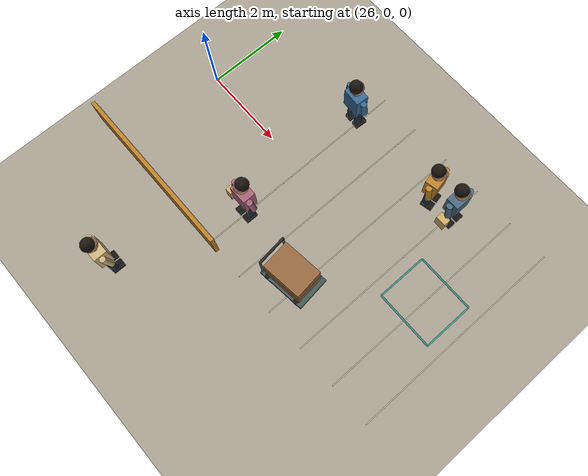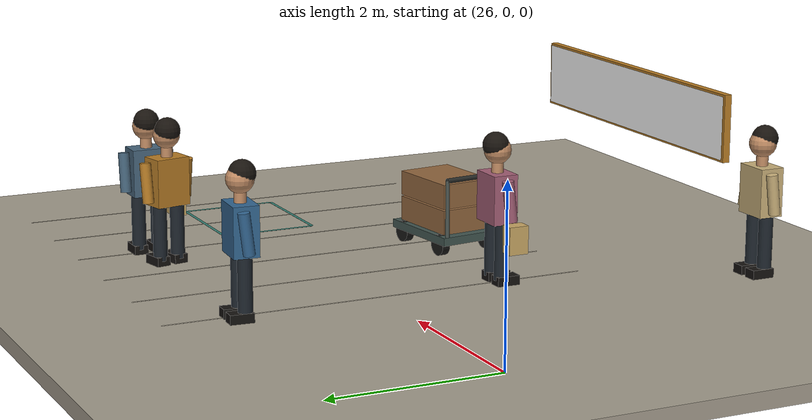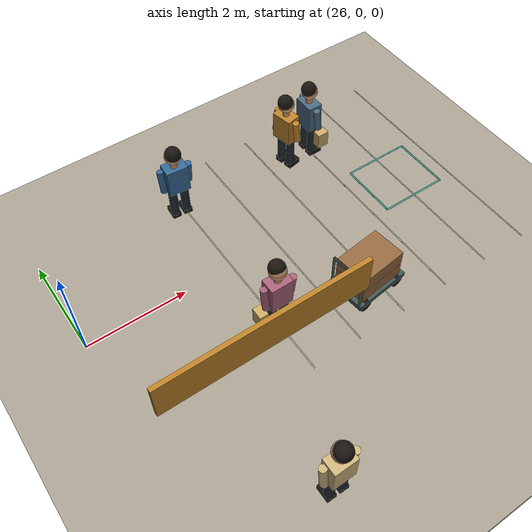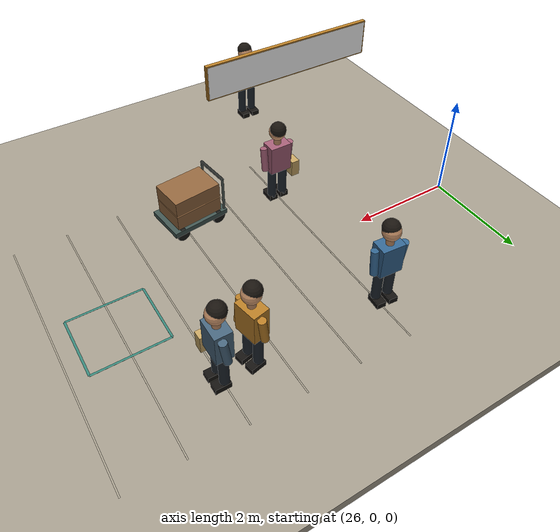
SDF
<sdf version="1.10">
 <world name="swan_market">
  <model name="ground">
   <static>true</static>
   <pose>15 0 -0.1 0 0 0</pose>
   <link name="body">
    <collision name="box_collision"><geometry><box><size>46 24 0.2</size></box></geometry></collision>
    <visual name="box_visual">
     <geometry><box><size>46 24 0.2</size></box></geometry>
     <material><ambient>0.64 0.61 0.55 1</ambient><diffuse>0.64 0.61 0.55 1</diffuse></material>
    </visual>
   </link>
  </model>
  <model name="paving_joint_29">
   <static>true</static>
   <pose>29 0 0.0045 0 0 0</pose>
   <link name="body">
    <visual name="box_visual">
     <geometry><box><size>0.025 5.2 0.001</size></box></geometry>
     <material><ambient>0.67 0.64 0.57 1</ambient><diffuse>0.67 0.64 0.57 1</diffuse></material>
    </visual>
   </link>
  </model>
  <model name="paving_joint_30">
   <static>true</static>
   <pose>30 0 0.0045 0 0 0</pose>
   <link name="body">
    <visual name="box_visual">
     <geometry><box><size>0.025 5.2 0.001</size></box></geometry>
     <material><ambient>0.67 0.64 0.57 1</ambient><diffuse>0.67 0.64 0.57 1</diffuse></material>
    </visual>
   </link>
  </model>
  <model name="paving_joint_31">
   <static>true</static>
   <pose>31 0 0.0045 0 0 0</pose>
   <link name="body">
    <visual name="box_visual">
     <geometry><box><size>0.025 5.2 0.001</size></box></geometry>
     <material><ambient>0.67 0.64 0.57 1</ambient><diffuse>0.67 0.64 0.57 1</diffuse></material>
    </visual>
   </link>
  </model>
  <model name="paving_joint_32">
   <static>true</static>
   <pose>32 0 0.0045 0 0 0</pose>
   <link name="body">
    <visual name="box_visual">
     <geometry><box><size>0.025 5.2 0.001</size></box></geometry>
     <material><ambient>0.67 0.64 0.57 1</ambient><diffuse>0.67 0.64 0.57 1</diffuse></material>
    </visual>
   </link>
  </model>
  <model name="paving_joint_33">
   <static>true</static>
   <pose>33 0 0.0045 0 0 0</pose>
   <link name="body">
    <visual name="box_visual">
     <geometry><box><size>0.025 5.2 0.001</size></box></geometry>
     <material><ambient>0.67 0.64 0.57 1</ambient><diffuse>0.67 0.64 0.57 1</diffuse></material>
    </visual>
   </link>
  </model>
  <model name="paving_joint_34">
   <static>true</static>
   <pose>34 0 0.0045 0 0 0</pose>
   <link name="body">
    <visual name="box_visual">
     <geometry><box><size>0.025 5.2 0.001</size></box></geometry>
     <material><ambient>0.67 0.64 0.57 1</ambient><diffuse>0.67 0.64 0.57 1</diffuse></material>
    </visual>
   </link>
  </model>
  <model name="signboard_7">
   <static>true</static>
   <pose>28 -2.69 2.24 0 0 0</pose>
   <link name="body">
    <collision name="box_collision"><geometry><box><size>3.65 0.08 0.72</size></box></geometry></collision>
    <visual name="box_visual">
     <geometry><box><size>3.65 0.08 0.72</size></box></geometry>
     <material><ambient>0.72 0.49 0.15 1</ambient><diffuse>0.72 0.49 0.15 1</diffuse></material>
    </visual>
   </link>
  </model>
  <model name="sign_shop_7">
   <static>true</static>
   <pose>28 -2.642 2.24 0 0 3.1416</pose>
   <link name="body">
    <visual name="lettering">
     <geometry>
      <mesh><uri>model://swan_market_assets/meshes/shop_7.dae</uri><scale>3.6 1 0.675</scale></mesh>
     </geometry>
     <material>
      <ambient>1 1 1 1</ambient>
      <diffuse>1 1 1 1</diffuse>
      <emissive>0 0 0 1</emissive>
      <pbr>
       <metal>
        <albedo_map>model://swan_market_assets/materials/textures/shop_7.png</albedo_map>
        <metalness>0</metalness>
        <roughness>1</roughness>
       </metal>
      </pbr>
     </material>
    </visual>
   </link>
  </model>
  <model name="shopper_flowers">
   <static>true</static>
   <pose>29 -1.5 0 0 0 -1.5708</pose>
   <link name="body">
    <collision name="leg_-1_collision">
     <pose>0 -0.12 0.4 0 0 0</pose>
     <geometry><cylinder><radius>0.085</radius><length>0.68</length></cylinder></geometry>
    </collision>
    <visual name="leg_-1_visual">
     <pose>0 -0.12 0.4 0 0 0</pose>
     <geometry><cylinder><radius>0.085</radius><length>0.68</length></cylinder></geometry>
     <material><ambient>0.12 0.15 0.18 1</ambient><diffuse>0.12 0.15 0.18 1</diffuse></material>
    </visual>
    <collision name="shoe_-1_collision">
     <pose>0.06 -0.12 0.055 0 0 0</pose>
     <geometry><box><size>0.28 0.17 0.11</size></box></geometry>
    </collision>
    <visual name="shoe_-1_visual">
     <pose>0.06 -0.12 0.055 0 0 0</pose>
     <geometry><box><size>0.28 0.17 0.11</size></box></geometry>
     <material><ambient>0.08 0.07 0.06 1</ambient><diffuse>0.08 0.07 0.06 1</diffuse></material>
    </visual>
    <collision name="arm_-1_collision">
     <pose>0.02 -0.27 1.02 0 -0.12 0</pose>
     <geometry><cylinder><radius>0.068</radius><length>0.48</length></cylinder></geometry>
    </collision>
    <visual name="arm_-1_visual">
     <pose>0.02 -0.27 1.02 0 -0.12 0</pose>
     <geometry><cylinder><radius>0.068</radius><length>0.48</length></cylinder></geometry>
     <material><ambient>0.64 0.37 0.46 1</ambient><diffuse>0.64 0.37 0.46 1</diffuse></material>
    </visual>
    <collision name="leg_1_collision">
     <pose>0 0.12 0.4 0 0 0</pose>
     <geometry><cylinder><radius>0.085</radius><length>0.68</length></cylinder></geometry>
    </collision>
    <visual name="leg_1_visual">
     <pose>0 0.12 0.4 0 0 0</pose>
     <geometry><cylinder><radius>0.085</radius><length>0.68</length></cylinder></geometry>
     <material><ambient>0.12 0.15 0.18 1</ambient><diffuse>0.12 0.15 0.18 1</diffuse></material>
    </visual>
    <collision name="shoe_1_collision">
     <pose>0.06 0.12 0.055 0 0 0</pose>
     <geometry><box><size>0.28 0.17 0.11</size></box></geometry>
    </collision>
    <visual name="shoe_1_visual">
     <pose>0.06 0.12 0.055 0 0 0</pose>
     <geometry><box><size>0.28 0.17 0.11</size></box></geometry>
     <material><ambient>0.08 0.07 0.06 1</ambient><diffuse>0.08 0.07 0.06 1</diffuse></material>
    </visual>
    <collision name="arm_1_collision">
     <pose>0.02 0.27 1.02 0 0.12 0</pose>
     <geometry><cylinder><radius>0.068</radius><length>0.48</length></cylinder></geometry>
    </collision>
    <visual name="arm_1_visual">
     <pose>0.02 0.27 1.02 0 0.12 0</pose>
     <geometry><cylinder><radius>0.068</radius><length>0.48</length></cylinder></geometry>
     <material><ambient>0.64 0.37 0.46 1</ambient><diffuse>0.64 0.37 0.46 1</diffuse></material>
    </visual>
    <collision name="torso_collision">
     <pose>0 0 1.02 0 0 0</pose>
     <geometry><box><size>0.3 0.43 0.58</size></box></geometry>
    </collision>
    <visual name="torso_visual">
     <pose>0 0 1.02 0 0 0</pose>
     <geometry><box><size>0.3 0.43 0.58</size></box></geometry>
     <material><ambient>0.64 0.37 0.46 1</ambient><diffuse>0.64 0.37 0.46 1</diffuse></material>
    </visual>
    <visual name="neck_visual">
     <pose>0 0 1.37 0 0 0</pose>
     <geometry><cylinder><radius>0.07</radius><length>0.13</length></cylinder></geometry>
     <material><ambient>0.77 0.56 0.4 1</ambient><diffuse>0.77 0.56 0.4 1</diffuse></material>
    </visual>
    <collision name="head_collision">
     <pose>0 0 1.57 0 0 0</pose>
     <geometry><sphere><radius>0.16</radius></sphere></geometry>
    </collision>
    <visual name="head_visual">
     <pose>0 0 1.57 0 0 0</pose>
     <geometry><sphere><radius>0.16</radius></sphere></geometry>
     <material><ambient>0.77 0.56 0.4 1</ambient><diffuse>0.77 0.56 0.4 1</diffuse></material>
    </visual>
    <visual name="hair_visual">
     <pose>-0.025 0 1.63 0 0 0</pose>
     <geometry><sphere><radius>0.155</radius></sphere></geometry>
     <material><ambient>0.1 0.08 0.06 1</ambient><diffuse>0.1 0.08 0.06 1</diffuse></material>
    </visual>
    <collision name="shopping_bag_collision">
     <pose>0.04 -0.38 0.6 0 0 0</pose>
     <geometry><box><size>0.24 0.17 0.33</size></box></geometry>
    </collision>
    <visual name="shopping_bag_visual">
     <pose>0.04 -0.38 0.6 0 0 0</pose>
     <geometry><box><size>0.24 0.17 0.33</size></box></geometry>
     <material><ambient>0.78 0.65 0.39 1</ambient><diffuse>0.78 0.65 0.39 1</diffuse></material>
    </visual>
   </link>
  </model>
  <model name="shopper_exit">
   <static>true</static>
   <pose>32 1.7 0 0 0 0</pose>
   <link name="body">
    <collision name="leg_-1_collision">
     <pose>0 -0.12 0.4 0 0 0</pose>
     <geometry><cylinder><radius>0.085</radius><length>0.68</length></cylinder></geometry>
    </collision>
    <visual name="leg_-1_visual">
     <pose>0 -0.12 0.4 0 0 0</pose>
     <geometry><cylinder><radius>0.085</radius><length>0.68</length></cylinder></geometry>
     <material><ambient>0.12 0.15 0.18 1</ambient><diffuse>0.12 0.15 0.18 1</diffuse></material>
    </visual>
    <collision name="shoe_-1_collision">
     <pose>0.06 -0.12 0.055 0 0 0</pose>
     <geometry><box><size>0.28 0.17 0.11</size></box></geometry>
    </collision>
    <visual name="shoe_-1_visual">
     <pose>0.06 -0.12 0.055 0 0 0</pose>
     <geometry><box><size>0.28 0.17 0.11</size></box></geometry>
     <material><ambient>0.08 0.07 0.06 1</ambient><diffuse>0.08 0.07 0.06 1</diffuse></material>
    </visual>
    <collision name="arm_-1_collision">
     <pose>0.02 -0.27 1.02 0 -0.12 0</pose>
     <geometry><cylinder><radius>0.068</radius><length>0.48</length></cylinder></geometry>
    </collision>
    <visual name="arm_-1_visual">
     <pose>0.02 -0.27 1.02 0 -0.12 0</pose>
     <geometry><cylinder><radius>0.068</radius><length>0.48</length></cylinder></geometry>
     <material><ambient>0.28 0.4 0.49 1</ambient><diffuse>0.28 0.4 0.49 1</diffuse></material>
    </visual>
    <collision name="leg_1_collision">
     <pose>0 0.12 0.4 0 0 0</pose>
     <geometry><cylinder><radius>0.085</radius><length>0.68</length></cylinder></geometry>
    </collision>
    <visual name="leg_1_visual">
     <pose>0 0.12 0.4 0 0 0</pose>
     <geometry><cylinder><radius>0.085</radius><length>0.68</length></cylinder></geometry>
     <material><ambient>0.12 0.15 0.18 1</ambient><diffuse>0.12 0.15 0.18 1</diffuse></material>
    </visual>
    <collision name="shoe_1_collision">
     <pose>0.06 0.12 0.055 0 0 0</pose>
     <geometry><box><size>0.28 0.17 0.11</size></box></geometry>
    </collision>
    <visual name="shoe_1_visual">
     <pose>0.06 0.12 0.055 0 0 0</pose>
     <geometry><box><size>0.28 0.17 0.11</size></box></geometry>
     <material><ambient>0.08 0.07 0.06 1</ambient><diffuse>0.08 0.07 0.06 1</diffuse></material>
    </visual>
    <collision name="arm_1_collision">
     <pose>0.02 0.27 1.02 0 0.12 0</pose>
     <geometry><cylinder><radius>0.068</radius><length>0.48</length></cylinder></geometry>
    </collision>
    <visual name="arm_1_visual">
     <pose>0.02 0.27 1.02 0 0.12 0</pose>
     <geometry><cylinder><radius>0.068</radius><length>0.48</length></cylinder></geometry>
     <material><ambient>0.28 0.4 0.49 1</ambient><diffuse>0.28 0.4 0.49 1</diffuse></material>
    </visual>
    <collision name="torso_collision">
     <pose>0 0 1.02 0 0 0</pose>
     <geometry><box><size>0.3 0.43 0.58</size></box></geometry>
    </collision>
    <visual name="torso_visual">
     <pose>0 0 1.02 0 0 0</pose>
     <geometry><box><size>0.3 0.43 0.58</size></box></geometry>
     <material><ambient>0.28 0.4 0.49 1</ambient><diffuse>0.28 0.4 0.49 1</diffuse></material>
    </visual>
    <visual name="neck_visual">
     <pose>0 0 1.37 0 0 0</pose>
     <geometry><cylinder><radius>0.07</radius><length>0.13</length></cylinder></geometry>
     <material><ambient>0.77 0.56 0.4 1</ambient><diffuse>0.77 0.56 0.4 1</diffuse></material>
    </visual>
    <collision name="head_collision">
     <pose>0 0 1.57 0 0 0</pose>
     <geometry><sphere><radius>0.16</radius></sphere></geometry>
    </collision>
    <visual name="head_visual">
     <pose>0 0 1.57 0 0 0</pose>
     <geometry><sphere><radius>0.16</radius></sphere></geometry>
     <material><ambient>0.77 0.56 0.4 1</ambient><diffuse>0.77 0.56 0.4 1</diffuse></material>
    </visual>
    <visual name="hair_visual">
     <pose>-0.025 0 1.63 0 0 0</pose>
     <geometry><sphere><radius>0.155</radius></sphere></geometry>
     <material><ambient>0.1 0.08 0.06 1</ambient><diffuse>0.1 0.08 0.06 1</diffuse></material>
    </visual>
    <collision name="shopping_bag_collision">
     <pose>0.04 -0.38 0.6 0 0 0</pose>
     <geometry><box><size>0.24 0.17 0.33</size></box></geometry>
    </collision>
    <visual name="shopping_bag_visual">
     <pose>0.04 -0.38 0.6 0 0 0</pose>
     <geometry><box><size>0.24 0.17 0.33</size></box></geometry>
     <material><ambient>0.78 0.65 0.39 1</ambient><diffuse>0.78 0.65 0.39 1</diffuse></material>
    </visual>
   </link>
  </model>
  <model name="vendor_3">
   <static>true</static>
   <pose>28 -4.45 0 0 0 1.5708</pose>
   <link name="body">
    <collision name="leg_-1_collision">
     <pose>0 -0.12 0.4 0 0 0</pose>
     <geometry><cylinder><radius>0.085</radius><length>0.68</length></cylinder></geometry>
    </collision>
    <visual name="leg_-1_visual">
     <pose>0 -0.12 0.4 0 0 0</pose>
     <geometry><cylinder><radius>0.085</radius><length>0.68</length></cylinder></geometry>
     <material><ambient>0.12 0.15 0.18 1</ambient><diffuse>0.12 0.15 0.18 1</diffuse></material>
    </visual>
    <collision name="shoe_-1_collision">
     <pose>0.06 -0.12 0.055 0 0 0</pose>
     <geometry><box><size>0.28 0.17 0.11</size></box></geometry>
    </collision>
    <visual name="shoe_-1_visual">
     <pose>0.06 -0.12 0.055 0 0 0</pose>
     <geometry><box><size>0.28 0.17 0.11</size></box></geometry>
     <material><ambient>0.08 0.07 0.06 1</ambient><diffuse>0.08 0.07 0.06 1</diffuse></material>
    </visual>
    <collision name="arm_-1_collision">
     <pose>0.02 -0.27 1.02 0 -0.12 0</pose>
     <geometry><cylinder><radius>0.068</radius><length>0.48</length></cylinder></geometry>
    </collision>
    <visual name="arm_-1_visual">
     <pose>0.02 -0.27 1.02 0 -0.12 0</pose>
     <geometry><cylinder><radius>0.068</radius><length>0.48</length></cylinder></geometry>
     <material><ambient>0.79 0.69 0.48 1</ambient><diffuse>0.79 0.69 0.48 1</diffuse></material>
    </visual>
    <collision name="leg_1_collision">
     <pose>0 0.12 0.4 0 0 0</pose>
     <geometry><cylinder><radius>0.085</radius><length>0.68</length></cylinder></geometry>
    </collision>
    <visual name="leg_1_visual">
     <pose>0 0.12 0.4 0 0 0</pose>
     <geometry><cylinder><radius>0.085</radius><length>0.68</length></cylinder></geometry>
     <material><ambient>0.12 0.15 0.18 1</ambient><diffuse>0.12 0.15 0.18 1</diffuse></material>
    </visual>
    <collision name="shoe_1_collision">
     <pose>0.06 0.12 0.055 0 0 0</pose>
     <geometry><box><size>0.28 0.17 0.11</size></box></geometry>
    </collision>
    <visual name="shoe_1_visual">
     <pose>0.06 0.12 0.055 0 0 0</pose>
     <geometry><box><size>0.28 0.17 0.11</size></box></geometry>
     <material><ambient>0.08 0.07 0.06 1</ambient><diffuse>0.08 0.07 0.06 1</diffuse></material>
    </visual>
    <collision name="arm_1_collision">
     <pose>0.02 0.27 1.02 0 0.12 0</pose>
     <geometry><cylinder><radius>0.068</radius><length>0.48</length></cylinder></geometry>
    </collision>
    <visual name="arm_1_visual">
     <pose>0.02 0.27 1.02 0 0.12 0</pose>
     <geometry><cylinder><radius>0.068</radius><length>0.48</length></cylinder></geometry>
     <material><ambient>0.79 0.69 0.48 1</ambient><diffuse>0.79 0.69 0.48 1</diffuse></material>
    </visual>
    <collision name="torso_collision">
     <pose>0 0 1.02 0 0 0</pose>
     <geometry><box><size>0.3 0.43 0.58</size></box></geometry>
    </collision>
    <visual name="torso_visual">
     <pose>0 0 1.02 0 0 0</pose>
     <geometry><box><size>0.3 0.43 0.58</size></box></geometry>
     <material><ambient>0.79 0.69 0.48 1</ambient><diffuse>0.79 0.69 0.48 1</diffuse></material>
    </visual>
    <visual name="neck_visual">
     <pose>0 0 1.37 0 0 0</pose>
     <geometry><cylinder><radius>0.07</radius><length>0.13</length></cylinder></geometry>
     <material><ambient>0.77 0.56 0.4 1</ambient><diffuse>0.77 0.56 0.4 1</diffuse></material>
    </visual>
    <collision name="head_collision">
     <pose>0 0 1.57 0 0 0</pose>
     <geometry><sphere><radius>0.16</radius></sphere></geometry>
    </collision>
    <visual name="head_visual">
     <pose>0 0 1.57 0 0 0</pose>
     <geometry><sphere><radius>0.16</radius></sphere></geometry>
     <material><ambient>0.77 0.56 0.4 1</ambient><diffuse>0.77 0.56 0.4 1</diffuse></material>
    </visual>
    <visual name="hair_visual">
     <pose>-0.025 0 1.63 0 0 0</pose>
     <geometry><sphere><radius>0.155</radius></sphere></geometry>
     <material><ambient>0.1 0.08 0.06 1</ambient><diffuse>0.1 0.08 0.06 1</diffuse></material>
    </visual>
   </link>
  </model>
  <model name="handcart_waiting">
   <static>true</static>
   <pose>30.8 -1.75 0 0 0 0.12</pose>
   <link name="body">
    <collision name="bed_collision">
     <pose>0 0 0.2 0 0 0</pose>
     <geometry><box><size>1.15 0.8 0.1</size></box></geometry>
    </collision>
    <visual name="bed_visual">
     <pose>0 0 0.2 0 0 0</pose>
     <geometry><box><size>1.15 0.8 0.1</size></box></geometry>
     <material><ambient>0.25 0.33 0.31 1</ambient><diffuse>0.25 0.33 0.31 1</diffuse></material>
    </visual>
    <collision name="wheel_-0.4_-0.34_collision">
     <pose>-0.4 -0.34 0.13 1.5708 0 0</pose>
     <geometry><cylinder><radius>0.13</radius><length>0.1</length></cylinder></geometry>
    </collision>
    <visual name="wheel_-0.4_-0.34_visual">
     <pose>-0.4 -0.34 0.13 1.5708 0 0</pose>
     <geometry><cylinder><radius>0.13</radius><length>0.1</length></cylinder></geometry>
     <material><ambient>0.09 0.09 0.08 1</ambient><diffuse>0.09 0.09 0.08 1</diffuse></material>
    </visual>
    <collision name="wheel_-0.4_0.34_collision">
     <pose>-0.4 0.34 0.13 1.5708 0 0</pose>
     <geometry><cylinder><radius>0.13</radius><length>0.1</length></cylinder></geometry>
    </collision>
    <visual name="wheel_-0.4_0.34_visual">
     <pose>-0.4 0.34 0.13 1.5708 0 0</pose>
     <geometry><cylinder><radius>0.13</radius><length>0.1</length></cylinder></geometry>
     <material><ambient>0.09 0.09 0.08 1</ambient><diffuse>0.09 0.09 0.08 1</diffuse></material>
    </visual>
    <collision name="wheel_0.4_-0.34_collision">
     <pose>0.4 -0.34 0.13 1.5708 0 0</pose>
     <geometry><cylinder><radius>0.13</radius><length>0.1</length></cylinder></geometry>
    </collision>
    <visual name="wheel_0.4_-0.34_visual">
     <pose>0.4 -0.34 0.13 1.5708 0 0</pose>
     <geometry><cylinder><radius>0.13</radius><length>0.1</length></cylinder></geometry>
     <material><ambient>0.09 0.09 0.08 1</ambient><diffuse>0.09 0.09 0.08 1</diffuse></material>
    </visual>
    <collision name="wheel_0.4_0.34_collision">
     <pose>0.4 0.34 0.13 1.5708 0 0</pose>
     <geometry><cylinder><radius>0.13</radius><length>0.1</length></cylinder></geometry>
    </collision>
    <visual name="wheel_0.4_0.34_visual">
     <pose>0.4 0.34 0.13 1.5708 0 0</pose>
     <geometry><cylinder><radius>0.13</radius><length>0.1</length></cylinder></geometry>
     <material><ambient>0.09 0.09 0.08 1</ambient><diffuse>0.09 0.09 0.08 1</diffuse></material>
    </visual>
    <collision name="cargo_0.41_collision">
     <pose>0 0 0.41 0 0 0</pose>
     <geometry><box><size>0.95 0.68 0.3</size></box></geometry>
    </collision>
    <visual name="cargo_0.41_visual">
     <pose>0 0 0.41 0 0 0</pose>
     <geometry><box><size>0.95 0.68 0.3</size></box></geometry>
     <material><ambient>0.57 0.4 0.24 1</ambient><diffuse>0.57 0.4 0.24 1</diffuse></material>
    </visual>
    <collision name="cargo_0.73_collision">
     <pose>0 0 0.73 0 0 0</pose>
     <geometry><box><size>0.95 0.68 0.3</size></box></geometry>
    </collision>
    <visual name="cargo_0.73_visual">
     <pose>0 0 0.73 0 0 0</pose>
     <geometry><box><size>0.95 0.68 0.3</size></box></geometry>
     <material><ambient>0.57 0.4 0.24 1</ambient><diffuse>0.57 0.4 0.24 1</diffuse></material>
    </visual>
    <collision name="handle_-0.34_collision">
     <pose>-0.55 -0.34 0.58 0 0 0</pose>
     <geometry><cylinder><radius>0.025</radius><length>0.75</length></cylinder></geometry>
    </collision>
    <visual name="handle_-0.34_visual">
     <pose>-0.55 -0.34 0.58 0 0 0</pose>
     <geometry><cylinder><radius>0.025</radius><length>0.75</length></cylinder></geometry>
     <material><ambient>0.3 0.34 0.32 1</ambient><diffuse>0.3 0.34 0.32 1</diffuse></material>
    </visual>
    <collision name="handle_0.34_collision">
     <pose>-0.55 0.34 0.58 0 0 0</pose>
     <geometry><cylinder><radius>0.025</radius><length>0.75</length></cylinder></geometry>
    </collision>
    <visual name="handle_0.34_visual">
     <pose>-0.55 0.34 0.58 0 0 0</pose>
     <geometry><cylinder><radius>0.025</radius><length>0.75</length></cylinder></geometry>
     <material><ambient>0.3 0.34 0.32 1</ambient><diffuse>0.3 0.34 0.32 1</diffuse></material>
    </visual>
    <collision name="grip_collision">
     <pose>-0.55 0 0.95 1.5708 0 0</pose>
     <geometry><cylinder><radius>0.03</radius><length>0.7</length></cylinder></geometry>
    </collision>
    <visual name="grip_visual">
     <pose>-0.55 0 0.95 1.5708 0 0</pose>
     <geometry><cylinder><radius>0.03</radius><length>0.7</length></cylinder></geometry>
     <material><ambient>0.15 0.16 0.15 1</ambient><diffuse>0.15 0.16 0.15 1</diffuse></material>
    </visual>
   </link>
  </model>
  <model name="crowd_10">
   <static>true</static>
   <pose>28.9 1.7 0 0 0 1.5</pose>
   <link name="body">
    <collision name="leg_-1_collision">
     <pose>0 -0.12 0.4 0 0 0</pose>
     <geometry><cylinder><radius>0.085</radius><length>0.68</length></cylinder></geometry>
    </collision>
    <visual name="leg_-1_visual">
     <pose>0 -0.12 0.4 0 0 0</pose>
     <geometry><cylinder><radius>0.085</radius><length>0.68</length></cylinder></geometry>
     <material><ambient>0.12 0.15 0.18 1</ambient><diffuse>0.12 0.15 0.18 1</diffuse></material>
    </visual>
    <collision name="shoe_-1_collision">
     <pose>0.06 -0.12 0.055 0 0 0</pose>
     <geometry><box><size>0.28 0.17 0.11</size></box></geometry>
    </collision>
    <visual name="shoe_-1_visual">
     <pose>0.06 -0.12 0.055 0 0 0</pose>
     <geometry><box><size>0.28 0.17 0.11</size></box></geometry>
     <material><ambient>0.08 0.07 0.06 1</ambient><diffuse>0.08 0.07 0.06 1</diffuse></material>
    </visual>
    <collision name="arm_-1_collision">
     <pose>0.02 -0.27 1.02 0 -0.12 0</pose>
     <geometry><cylinder><radius>0.068</radius><length>0.48</length></cylinder></geometry>
    </collision>
    <visual name="arm_-1_visual">
     <pose>0.02 -0.27 1.02 0 -0.12 0</pose>
     <geometry><cylinder><radius>0.068</radius><length>0.48</length></cylinder></geometry>
     <material><ambient>0.2 0.4 0.57 1</ambient><diffuse>0.2 0.4 0.57 1</diffuse></material>
    </visual>
    <collision name="leg_1_collision">
     <pose>0 0.12 0.4 0 0 0</pose>
     <geometry><cylinder><radius>0.085</radius><length>0.68</length></cylinder></geometry>
    </collision>
    <visual name="leg_1_visual">
     <pose>0 0.12 0.4 0 0 0</pose>
     <geometry><cylinder><radius>0.085</radius><length>0.68</length></cylinder></geometry>
     <material><ambient>0.12 0.15 0.18 1</ambient><diffuse>0.12 0.15 0.18 1</diffuse></material>
    </visual>
    <collision name="shoe_1_collision">
     <pose>0.06 0.12 0.055 0 0 0</pose>
     <geometry><box><size>0.28 0.17 0.11</size></box></geometry>
    </collision>
    <visual name="shoe_1_visual">
     <pose>0.06 0.12 0.055 0 0 0</pose>
     <geometry><box><size>0.28 0.17 0.11</size></box></geometry>
     <material><ambient>0.08 0.07 0.06 1</ambient><diffuse>0.08 0.07 0.06 1</diffuse></material>
    </visual>
    <collision name="arm_1_collision">
     <pose>0.02 0.27 1.02 0 0.12 0</pose>
     <geometry><cylinder><radius>0.068</radius><length>0.48</length></cylinder></geometry>
    </collision>
    <visual name="arm_1_visual">
     <pose>0.02 0.27 1.02 0 0.12 0</pose>
     <geometry><cylinder><radius>0.068</radius><length>0.48</length></cylinder></geometry>
     <material><ambient>0.2 0.4 0.57 1</ambient><diffuse>0.2 0.4 0.57 1</diffuse></material>
    </visual>
    <collision name="torso_collision">
     <pose>0 0 1.02 0 0 0</pose>
     <geometry><box><size>0.3 0.43 0.58</size></box></geometry>
    </collision>
    <visual name="torso_visual">
     <pose>0 0 1.02 0 0 0</pose>
     <geometry><box><size>0.3 0.43 0.58</size></box></geometry>
     <material><ambient>0.2 0.4 0.57 1</ambient><diffuse>0.2 0.4 0.57 1</diffuse></material>
    </visual>
    <visual name="neck_visual">
     <pose>0 0 1.37 0 0 0</pose>
     <geometry><cylinder><radius>0.07</radius><length>0.13</length></cylinder></geometry>
     <material><ambient>0.77 0.56 0.4 1</ambient><diffuse>0.77 0.56 0.4 1</diffuse></material>
    </visual>
    <collision name="head_collision">
     <pose>0 0 1.57 0 0 0</pose>
     <geometry><sphere><radius>0.16</radius></sphere></geometry>
    </collision>
    <visual name="head_visual">
     <pose>0 0 1.57 0 0 0</pose>
     <geometry><sphere><radius>0.16</radius></sphere></geometry>
     <material><ambient>0.77 0.56 0.4 1</ambient><diffuse>0.77 0.56 0.4 1</diffuse></material>
    </visual>
    <visual name="hair_visual">
     <pose>-0.025 0 1.63 0 0 0</pose>
     <geometry><sphere><radius>0.155</radius></sphere></geometry>
     <material><ambient>0.1 0.08 0.06 1</ambient><diffuse>0.1 0.08 0.06 1</diffuse></material>
    </visual>
   </link>
  </model>
  <model name="crowd_11">
   <static>true</static>
   <pose>31.4 1.65 0 0 0 0.2</pose>
   <link name="body">
    <collision name="leg_-1_collision">
     <pose>0 -0.12 0.4 0 0 0</pose>
     <geometry><cylinder><radius>0.085</radius><length>0.68</length></cylinder></geometry>
    </collision>
    <visual name="leg_-1_visual">
     <pose>0 -0.12 0.4 0 0 0</pose>
     <geometry><cylinder><radius>0.085</radius><length>0.68</length></cylinder></geometry>
     <material><ambient>0.12 0.15 0.18 1</ambient><diffuse>0.12 0.15 0.18 1</diffuse></material>
    </visual>
    <collision name="shoe_-1_collision">
     <pose>0.06 -0.12 0.055 0 0 0</pose>
     <geometry><box><size>0.28 0.17 0.11</size></box></geometry>
    </collision>
    <visual name="shoe_-1_visual">
     <pose>0.06 -0.12 0.055 0 0 0</pose>
     <geometry><box><size>0.28 0.17 0.11</size></box></geometry>
     <material><ambient>0.08 0.07 0.06 1</ambient><diffuse>0.08 0.07 0.06 1</diffuse></material>
    </visual>
    <collision name="arm_-1_collision">
     <pose>0.02 -0.27 1.02 0 -0.12 0</pose>
     <geometry><cylinder><radius>0.068</radius><length>0.48</length></cylinder></geometry>
    </collision>
    <visual name="arm_-1_visual">
     <pose>0.02 -0.27 1.02 0 -0.12 0</pose>
     <geometry><cylinder><radius>0.068</radius><length>0.48</length></cylinder></geometry>
     <material><ambient>0.72 0.49 0.15 1</ambient><diffuse>0.72 0.49 0.15 1</diffuse></material>
    </visual>
    <collision name="leg_1_collision">
     <pose>0 0.12 0.4 0 0 0</pose>
     <geometry><cylinder><radius>0.085</radius><length>0.68</length></cylinder></geometry>
    </collision>
    <visual name="leg_1_visual">
     <pose>0 0.12 0.4 0 0 0</pose>
     <geometry><cylinder><radius>0.085</radius><length>0.68</length></cylinder></geometry>
     <material><ambient>0.12 0.15 0.18 1</ambient><diffuse>0.12 0.15 0.18 1</diffuse></material>
    </visual>
    <collision name="shoe_1_collision">
     <pose>0.06 0.12 0.055 0 0 0</pose>
     <geometry><box><size>0.28 0.17 0.11</size></box></geometry>
    </collision>
    <visual name="shoe_1_visual">
     <pose>0.06 0.12 0.055 0 0 0</pose>
     <geometry><box><size>0.28 0.17 0.11</size></box></geometry>
     <material><ambient>0.08 0.07 0.06 1</ambient><diffuse>0.08 0.07 0.06 1</diffuse></material>
    </visual>
    <collision name="arm_1_collision">
     <pose>0.02 0.27 1.02 0 0.12 0</pose>
     <geometry><cylinder><radius>0.068</radius><length>0.48</length></cylinder></geometry>
    </collision>
    <visual name="arm_1_visual">
     <pose>0.02 0.27 1.02 0 0.12 0</pose>
     <geometry><cylinder><radius>0.068</radius><length>0.48</length></cylinder></geometry>
     <material><ambient>0.72 0.49 0.15 1</ambient><diffuse>0.72 0.49 0.15 1</diffuse></material>
    </visual>
    <collision name="torso_collision">
     <pose>0 0 1.02 0 0 0</pose>
     <geometry><box><size>0.3 0.43 0.58</size></box></geometry>
    </collision>
    <visual name="torso_visual">
     <pose>0 0 1.02 0 0 0</pose>
     <geometry><box><size>0.3 0.43 0.58</size></box></geometry>
     <material><ambient>0.72 0.49 0.15 1</ambient><diffuse>0.72 0.49 0.15 1</diffuse></material>
    </visual>
    <visual name="neck_visual">
     <pose>0 0 1.37 0 0 0</pose>
     <geometry><cylinder><radius>0.07</radius><length>0.13</length></cylinder></geometry>
     <material><ambient>0.77 0.56 0.4 1</ambient><diffuse>0.77 0.56 0.4 1</diffuse></material>
    </visual>
    <collision name="head_collision">
     <pose>0 0 1.57 0 0 0</pose>
     <geometry><sphere><radius>0.16</radius></sphere></geometry>
    </collision>
    <visual name="head_visual">
     <pose>0 0 1.57 0 0 0</pose>
     <geometry><sphere><radius>0.16</radius></sphere></geometry>
     <material><ambient>0.77 0.56 0.4 1</ambient><diffuse>0.77 0.56 0.4 1</diffuse></material>
    </visual>
    <visual name="hair_visual">
     <pose>-0.025 0 1.63 0 0 0</pose>
     <geometry><sphere><radius>0.155</radius></sphere></geometry>
     <material><ambient>0.1 0.08 0.06 1</ambient><diffuse>0.1 0.08 0.06 1</diffuse></material>
    </visual>
   </link>
  </model>
  <model name="stop_2_-0.7_0">
   <static>true</static>
   <pose>32.3 0 0.009 0 0 0</pose>
   <link name="body">
    <visual name="box_visual">
     <geometry><box><size>0.04 1.2 0.002</size></box></geometry>
     <material><ambient>0.22 0.52 0.47 1</ambient><diffuse>0.22 0.52 0.47 1</diffuse></material>
    </visual>
   </link>
  </model>
  <model name="stop_2_0.7_0">
   <static>true</static>
   <pose>33.7 0 0.009 0 0 0</pose>
   <link name="body">
    <visual name="box_visual">
     <geometry><box><size>0.04 1.2 0.002</size></box></geometry>
     <material><ambient>0.22 0.52 0.47 1</ambient><diffuse>0.22 0.52 0.47 1</diffuse></material>
    </visual>
   </link>
  </model>
  <model name="stop_2_0_-0.6">
   <static>true</static>
   <pose>33 -0.6 0.009 0 0 0</pose>
   <link name="body">
    <visual name="box_visual">
     <geometry><box><size>1.4 0.04 0.002</size></box></geometry>
     <material><ambient>0.22 0.52 0.47 1</ambient><diffuse>0.22 0.52 0.47 1</diffuse></material>
    </visual>
   </link>
  </model>
  <model name="stop_2_0_0.6">
   <static>true</static>
   <pose>33 0.6 0.009 0 0 0</pose>
   <link name="body">
    <visual name="box_visual">
     <geometry><box><size>1.4 0.04 0.002</size></box></geometry>
     <material><ambient>0.22 0.52 0.47 1</ambient><diffuse>0.22 0.52 0.47 1</diffuse></material>
    </visual>
   </link>
  </model>
 </world>
</sdf>
